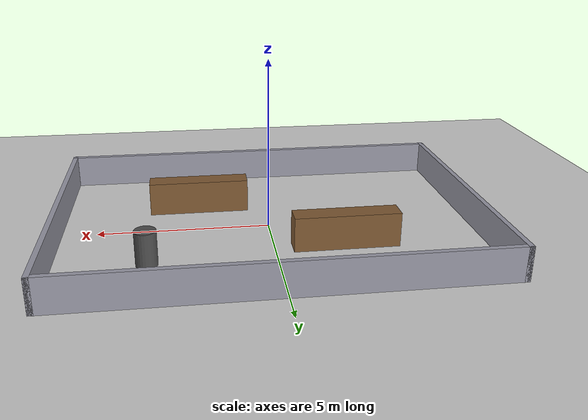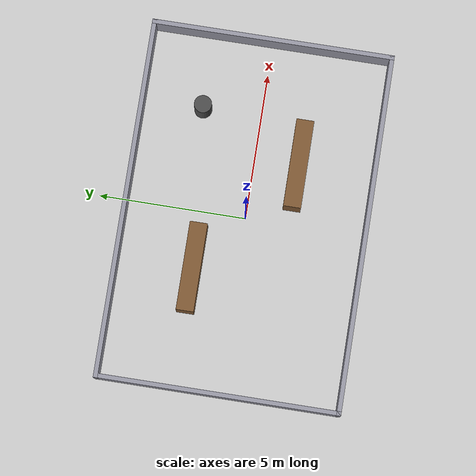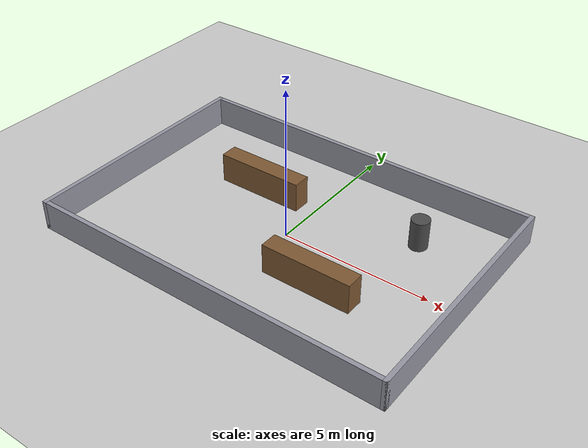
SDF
<?xml version="1.0" ?>
<sdf version="1.8">
  <world name="my_warehouse">

    <!-- System plugins: these MUST be here or the LiDAR/IMU won't publish,
         and SLAM will have nothing to map. -->
    <plugin filename="gz-sim-physics-system"
            name="gz::sim::systems::Physics"/>
    <plugin filename="gz-sim-user-commands-system"
            name="gz::sim::systems::UserCommands"/>
    <plugin filename="gz-sim-scene-broadcaster-system"
            name="gz::sim::systems::SceneBroadcaster"/>
    <plugin filename="gz-sim-sensors-system"
            name="gz::sim::systems::Sensors">
      <render_engine>ogre2</render_engine>
    </plugin>
    <plugin filename="gz-sim-imu-system"
            name="gz::sim::systems::Imu"/>

    <physics name="1ms" type="ignored">
      <max_step_size>0.003</max_step_size>
      <real_time_factor>1.0</real_time_factor>
    </physics>

    <!-- Lighting -->
    <light type="directional" name="sun">
      <cast_shadows>true</cast_shadows>
      <pose>0 0 10 0 0 0</pose>
      <diffuse>1 1 1 1</diffuse>
      <specular>0.5 0.5 0.5 1</specular>
      <direction>-0.5 0.1 -0.9</direction>
    </light>

    <!-- Floor -->
    <model name="ground_plane">
      <static>true</static>
      <link name="link">
        <collision name="collision">
          <geometry><plane><normal>0 0 1</normal><size>100 100</size></plane></geometry>
        </collision>
        <visual name="visual">
          <geometry><plane><normal>0 0 1</normal><size>100 100</size></plane></geometry>
          <material><ambient>0.8 0.8 0.8 1</ambient><diffuse>0.8 0.8 0.8 1</diffuse></material>
        </visual>
      </link>
    </model>

    <!-- ===== Outer walls (room is 12 m x 8 m) ===== -->
    <model name="wall_north">
      <static>true</static>
      <pose>0 4.075 0.5 0 0 0</pose>
      <link name="link">
        <collision name="c"><geometry><box><size>12.3 0.15 1.0</size></box></geometry></collision>
        <visual name="v"><geometry><box><size>12.3 0.15 1.0</size></box></geometry>
          <material><ambient>0.6 0.6 0.65 1</ambient><diffuse>0.6 0.6 0.65 1</diffuse></material></visual>
      </link>
    </model>

    <model name="wall_south">
      <static>true</static>
      <pose>0 -4.075 0.5 0 0 0</pose>
      <link name="link">
        <collision name="c"><geometry><box><size>12.3 0.15 1.0</size></box></geometry></collision>
        <visual name="v"><geometry><box><size>12.3 0.15 1.0</size></box></geometry>
          <material><ambient>0.6 0.6 0.65 1</ambient><diffuse>0.6 0.6 0.65 1</diffuse></material></visual>
      </link>
    </model>

    <model name="wall_east">
      <static>true</static>
      <pose>6.075 0 0.5 0 0 0</pose>
      <link name="link">
        <collision name="c"><geometry><box><size>0.15 8.3 1.0</size></box></geometry></collision>
        <visual name="v"><geometry><box><size>0.15 8.3 1.0</size></box></geometry>
          <material><ambient>0.6 0.6 0.65 1</ambient><diffuse>0.6 0.6 0.65 1</diffuse></material></visual>
      </link>
    </model>

    <model name="wall_west">
      <static>true</static>
      <pose>-6.075 0 0.5 0 0 0</pose>
      <link name="link">
        <collision name="c"><geometry><box><size>0.15 8.3 1.0</size></box></geometry></collision>
        <visual name="v"><geometry><box><size>0.15 8.3 1.0</size></box></geometry>
          <material><ambient>0.6 0.6 0.65 1</ambient><diffuse>0.6 0.6 0.65 1</diffuse></material></visual>
      </link>
    </model>

    <!-- ===== Internal obstacles (things to map) ===== -->
    <model name="shelf_block_1">
      <static>true</static>
      <pose>-2.0 1.5 0.5 0 0 0</pose>
      <link name="link">
        <collision name="c"><geometry><box><size>3.0 0.6 1.0</size></box></geometry></collision>
        <visual name="v"><geometry><box><size>3.0 0.6 1.0</size></box></geometry>
          <material><ambient>0.4 0.3 0.2 1</ambient><diffuse>0.5 0.35 0.2 1</diffuse></material></visual>
      </link>
    </model>

    <model name="shelf_block_2">
      <static>true</static>
      <pose>2.0 -1.5 0.5 0 0 0</pose>
      <link name="link">
        <collision name="c"><geometry><box><size>3.0 0.6 1.0</size></box></geometry></collision>
        <visual name="v"><geometry><box><size>3.0 0.6 1.0</size></box></geometry>
          <material><ambient>0.4 0.3 0.2 1</ambient><diffuse>0.5 0.35 0.2 1</diffuse></material></visual>
      </link>
    </model>

    <model name="pillar">
      <static>true</static>
      <pose>3.5 2.0 0.5 0 0 0</pose>
      <link name="link">
        <collision name="c"><geometry><cylinder><radius>0.3</radius><length>1.0</length></cylinder></geometry></collision>
        <visual name="v"><geometry><cylinder><radius>0.3</radius><length>1.0</length></cylinder></geometry>
          <material><ambient>0.3 0.3 0.3 1</ambient><diffuse>0.3 0.3 0.3 1</diffuse></material></visual>
      </link>
    </model>

  </world>
</sdf>
